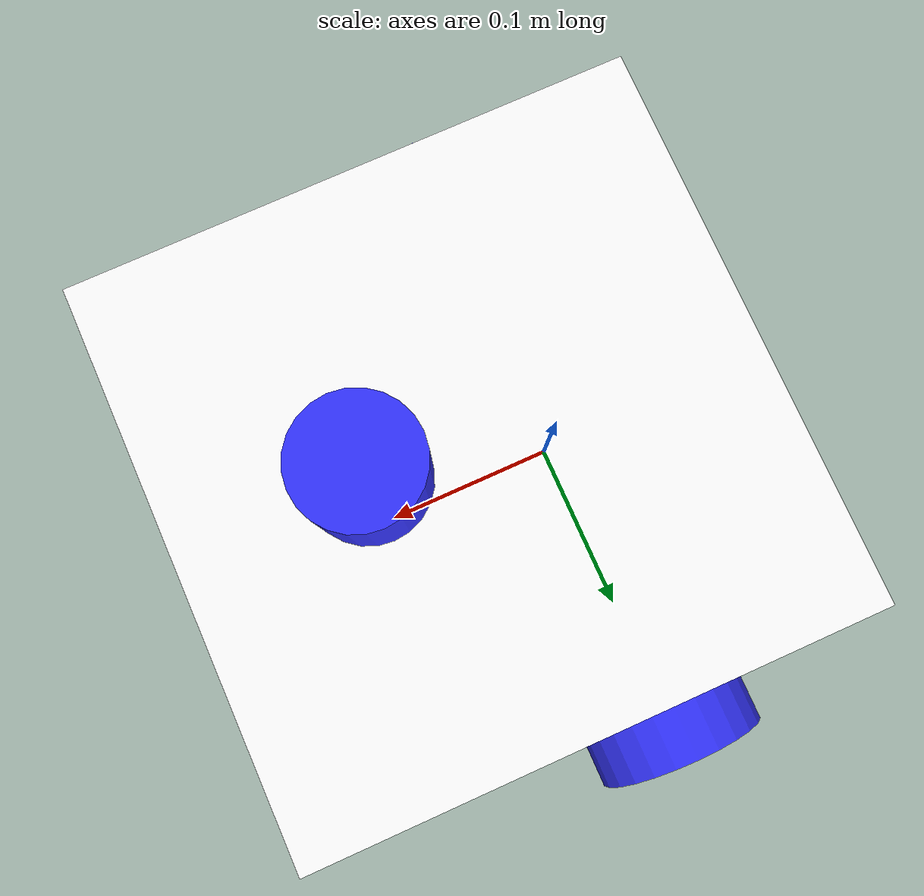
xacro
<?xml version="1.0"?>
<!-- robot_core.xacro -->
<robot xmlns:xacro="http://www.ros.org/wiki/xacro">

    <xacro:include filename="inertial_macros.xacro" />
    <xacro:arg name="mesh_enabled" default="false" />
    <xacro:arg name="robot_namespace" default="/" />

    <material name="white">
        <color rgba="1 1 1 1" />
    </material>

    <material name="orange">
        <color rgba="1 0.3 0.1 1" />
    </material>

    <material name="blue">
        <color rgba="0.2 0.2 1 1" />
    </material>

    <material name="black">
        <color rgba="0 0 0 1" />
    </material>

    <!-- BASE LINK -->

    <link name="base_link">

    </link>

    <!-- CHASSIS LINK -->

    <joint name="chassis_joint" type="fixed">
        <parent link="base_link" />
        <child link="chassis" />
        <origin xyz="-0.1 0 0" />
    </joint>

    <link name="chassis">
        <visual>
            <origin xyz="0.15 0 0.075" />
            <geometry>
                <box size="0.3 0.3 0.15" />
            </geometry>
            <material name="white" />
        </visual>
        <collision>
            <origin xyz="0.15 0 0.075" />
            <geometry>
                <box size="0.3 0.3 0.15" />
            </geometry>
        </collision>
        <xacro:inertial_box mass="0.5" x="0.3" y="0.3" z="0.15">
            <origin xyz="0.15 0 0.075" rpy="1.57 1.57 1.57" />
        </xacro:inertial_box>
    </link>

    <!-- LEFT WHEEL LINK -->

    <joint name="left_wheel" type="continuous">
        <parent link="base_link" />
        <child link="left_wheel_link" />
        <origin xyz="0 0.175 0" rpy="-${pi/2} 0 0" />
        <axis xyz="0 0 1" />
        <dynamics damping="0.5" friction="100.0" />
    </joint>

    <link name="left_wheel_link">
        <visual>
            <geometry>
                <cylinder radius="0.05" length="0.04" />
            </geometry>
            <material name="blue" />
        </visual>
        <collision>
            <geometry>
                <cylinder radius="0.05" length="0.04" />
            </geometry>
        </collision>
        <xacro:inertial_cylinder mass="0.1" length="0.04" radius="0.05">
            <origin xyz="0 0 0" rpy="0 0 0" />
        </xacro:inertial_cylinder>
    </link>

    <transmission name="left_wheel_trans" type="SimpleTransmission">
        <type>transmission_interface/SimpleTransmission</type>
        <actuator name="left_wheel_motor">
            <mechanicalReduction>1</mechanicalReduction>
        </actuator>
        <joint name="left_wheel">
            <hardwareInterface>hardware_interface/VelocityJointInterface</hardwareInterface>
        </joint>
    </transmission>

    <!-- RIGHT WHEEL LINK -->

    <joint name="right_wheel" type="continuous">
        <parent link="base_link" />
        <child link="right_wheel_link" />
        <origin xyz="0 -0.175 0" rpy="${pi/2} 0 0" />
        <axis xyz="0 0 -1" />
        <dynamics damping="0.5" friction="100.0" />
    </joint>

    <link name="right_wheel_link">
        <visual>
            <geometry>
                <cylinder radius="0.05" length="0.04" />
            </geometry>
            <material name="blue" />
        </visual>
        <collision>
            <geometry>
                <cylinder radius="0.05" length="0.04" />
            </geometry>
        </collision>
        <xacro:inertial_cylinder mass="0.1" length="0.04" radius="0.05">
            <origin xyz="0 0 0" rpy="0 0 0" />
        </xacro:inertial_cylinder>
    </link>
    <transmission name="right_wheel_trans" type="SimpleTransmission">
        <type>transmission_interface/SimpleTransmission</type>
        <actuator name="right_wheel_motor">
            <mechanicalReduction>1</mechanicalReduction>
        </actuator>
        <joint name="right_wheel">
            <hardwareInterface>hardware_interface/VelocityJointInterface</hardwareInterface>
        </joint>
    </transmission>

    <!--Front
    CASTER WHEEL LINK -->

    <joint name="caster_wheel_joint" type="fixed">
        <parent link="chassis" />
        <child link="caster_wheel" />
        <origin xyz="0.24 0 0" />
        <dynamics damping="0.0" friction="0.0" />
    </joint>

    <gazebo reference="caster_wheel">
        <mu1 value="0.0" />
        <mu2 value="0.0" />
        <kp value="10000000.0" />
        <kd value="1.0" />
        <fdir1 value="1 0 0" />
        <material>Gazebo/Grey</material>
        <turnGravityOff>false</turnGravityOff>
    </gazebo>

    <gazebo reference="left_wheel">
        <mu1 value="100.0" />
        <mu2 value="100.0" />
        <kp value="10000000.0" />
        <kd value="1.0" />
        <fdir1 value="1 0 0" />
        <material>Gazebo/Grey</material>
        <turnGravityOff>false</turnGravityOff>
    </gazebo>

    <gazebo reference="right_wheel">
        <mu1 value="100.0" />
        <mu2 value="100.0" />
        <kp value="10000000.0" />
        <kd value="1.0" />
        <fdir1 value="1 0 0" />
        <material>Gazebo/Grey</material>
        <turnGravityOff>false</turnGravityOff>
    </gazebo>

    <link name="caster_wheel">
        <visual>
            <geometry>
                <sphere radius="0.05" />
            </geometry>
            <material name="black" />
        </visual>
        <collision>
            <geometry>
                <sphere radius="0.05" />
            </geometry>
        </collision>
        <xacro:inertial_sphere mass="0.1" radius="0.05">
            <origin xyz="0 0 0" rpy="0 0 0" />
        </xacro:inertial_sphere>
    </link>

    <!-- Add a Sensor Link -->
    <link name="lidar_link">
        <visual>
            <!-- Visual properties of the lidar sensor -->
            <geometry>
                <cylinder radius="0.03" length="0.06" /> <!-- Example shape, adjust as needed -->
            </geometry>
            <material name="blue" /> <!-- Example material, adjust as needed -->
        </visual>
        <collision>
            <!-- Collision properties of the lidar sensor -->
            <geometry>
                <cylinder radius="0.03" length="0.06" /> <!-- Example shape, adjust as needed -->
            </geometry>
        </collision>
        <!-- Define inertial properties if necessary -->
    </link>

    <!-- Attach the Sensor to the Robot -->
    <joint name="lidar_joint" type="fixed">
        <parent link="chassis"/>
        <child link="lidar_link"/>
        <origin xyz="0.2 0 0.2" rpy="0 0 0"/>
    </joint>

    <gazebo reference="lidar_link">
        <material>Gazebo/Red</material>

        <sensor name="lidar" type="ray">
            <pose> 0 0 0 0 0 0 </pose>
            <visualize>true</visualize>
            <update_rate>10</update_rate>
            <ray>
                <scan>
                    <horizontal>
                        <samples>360</samples>
                        <min_angle>-3.14</min_angle>
                        <max_angle>3.14</max_angle>
                    </horizontal>
                </scan>
                <range>
                    <min>0.3</min>
                    <max>12</max>
                </range>
            </ray>
            <plugin name="lidar_controller" filename="libgazebo_ros_laser.so">
                <topicName>/scan</topicName>
                <frameName>lidar_link</frameName>
            </plugin>

        </sensor>
    </gazebo>

    <gazebo>
        <plugin name="gazebo_ros_control" filename="libgazebo_ros_control.so">
            <robotNamespace>$(arg robot_namespace)</robotNamespace>
            <legacyModeNS>true</legacyModeNS>
        </plugin>
    </gazebo>

</robot>
